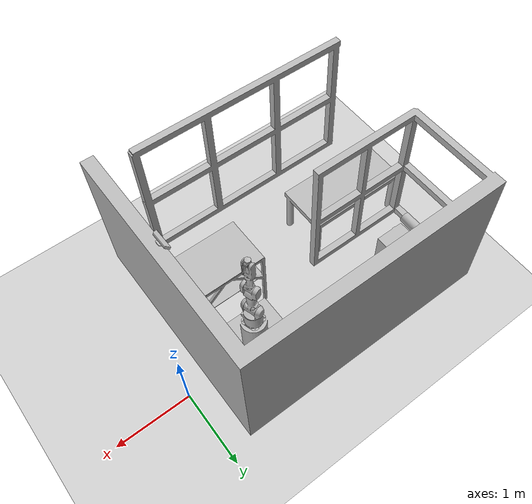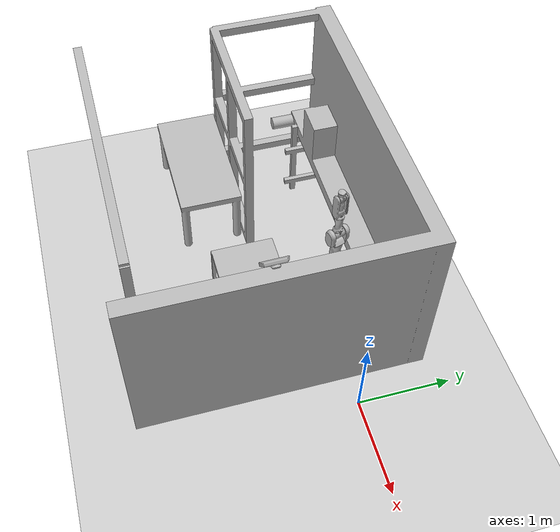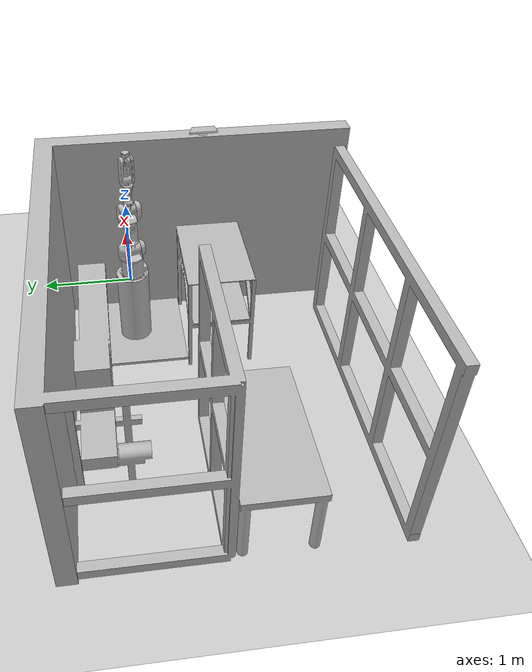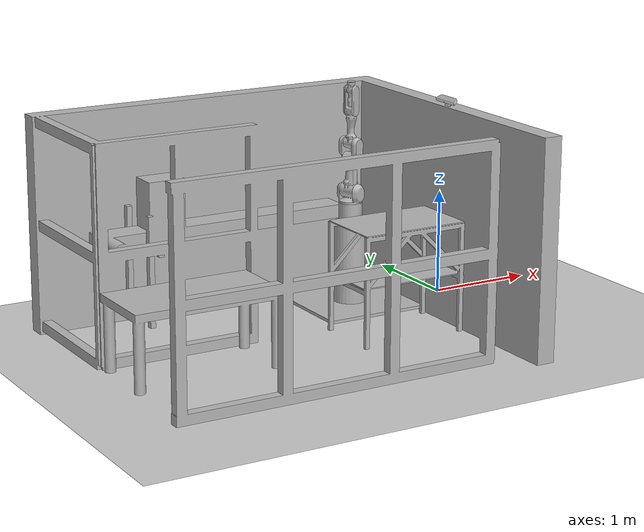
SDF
<sdf version="1.4">
 <world name="default">
  <light name="sun" type="directional">
   <pose>0 0 10 0 -0 0</pose>
   <diffuse>0.8 0.8 0.8 1</diffuse>
   <specular>0.2 0.2 0.2 1</specular>
   <attenuation>
    <range>1000</range>
    <constant>0.9</constant>
    <linear>0.01</linear>
    <quadratic>0.001</quadratic>
   </attenuation>
   <direction>-0.5 0.1 -0.9</direction>
  </light>
  <model name="ground_plane">
   <static>1</static>
   <link name="link">
    <collision name="collision">
     <geometry><plane><normal>0 0 1</normal><size>100 100</size></plane></geometry>
     <surface><friction><ode><mu>100</mu><mu2>50</mu2></ode></friction></surface>
    </collision>
    <visual name="visual">
     <cast_shadows>0</cast_shadows>
     <geometry><plane><normal>0 0 1</normal><size>100 100</size></plane></geometry>
     <material>
      <script><uri>file://media/materials/scripts/gazebo.material</uri><name>Gazebo/Grey</name></script>
     </material>
    </visual>
    <velocity_decay><linear>0</linear><angular>0</angular></velocity_decay>
   </link>
  </model>
  <physics type="ode">
   <max_step_size>0.001</max_step_size>
   <real_time_factor>1</real_time_factor>
   <real_time_update_rate>1000</real_time_update_rate>
   <gravity>0 0 -9.8</gravity>
  </physics>
  <scene><ambient>0.4 0.4 0.4 1</ambient><background>0.7 0.7 0.7 1</background><shadows>1</shadows></scene>
  <model name="scene">
   <link name="link">
    <collision name="collision">
     <geometry><mesh><uri>model://scene/meshes/table.dae</uri></mesh></geometry>
    </collision>
    <visual name="visual"><geometry><mesh><uri>model://scene/meshes/table.dae</uri></mesh></geometry></visual>
    <collision name="collision2">
     <geometry><mesh><uri>model://scene/meshes/fence1.dae</uri></mesh></geometry>
    </collision>
    <visual name="visual2"><geometry><mesh><uri>model://scene/meshes/fence1.dae</uri></mesh></geometry></visual>
    <collision name="collision3">
     <geometry><mesh><uri>model://scene/meshes/conveyorBelt.dae</uri></mesh></geometry>
    </collision>
    <visual name="visual3">
     <geometry><mesh><uri>model://scene/meshes/conveyorBelt.dae</uri></mesh></geometry>
    </visual>
    <collision name="collision4">
     <geometry><mesh><uri>model://scene/meshes/Finger.dae</uri></mesh></geometry>
    </collision>
    <visual name="visual4"><geometry><mesh><uri>model://scene/meshes/Finger.dae</uri></mesh></geometry></visual>
    <collision name="collision5">
     <geometry><mesh><uri>model://scene/meshes/foot.dae</uri></mesh></geometry>
    </collision>
    <visual name="visual5"><geometry><mesh><uri>model://scene/meshes/foot.dae</uri></mesh></geometry></visual>
    <velocity_decay><linear>0</linear><angular>0</angular></velocity_decay>
    <inertial>
     <inertia><ixx>1</ixx><ixy>0</ixy><ixz>0</ixz><iyy>1</iyy><iyz>0</iyz><izz>1</izz></inertia>
     <mass>1</mass>
    </inertial>
   </link>
   <pose>-0.999799 0 0.035406 3e-06 -2e-06 -3.9e-05</pose>
   <static>0</static>
  </model>
  <model name="WPtable">
   <link name="link">
    <collision name="collision">
     <geometry><mesh><uri>model://WPtable/meshes/WPtable.dae</uri></mesh></geometry>
    </collision>
    <visual name="visual"><geometry><mesh><uri>model://WPtable/meshes/WPtable.dae</uri></mesh></geometry></visual>
    <velocity_decay><linear>0</linear><angular>0</angular></velocity_decay>
    <inertial>
     <inertia><ixx>1</ixx><ixy>0</ixy><ixz>0</ixz><iyy>1</iyy><iyz>0</iyz><izz>1</izz></inertia>
     <mass>1</mass>
    </inertial>
   </link>
   <pose>-1.02075 -1.1514 0 0 -0 0</pose>
   <static>0</static>
  </model>
  <model name="kinect">
   <pose>-0.498007 -0.785071 2.056 0 0.6 -3.12318</pose>
   <link name="link">
    <inertial>
     <mass>0.1</mass>
     <inertia><ixx>1</ixx><ixy>0</ixy><ixz>0</ixz><iyy>1</iyy><iyz>0</iyz><izz>1</izz></inertia>
    </inertial>
    <collision name="collision"><geometry><box><size>0.073 0.276 0.072</size></box></geometry></collision>
    <visual name="visual"><geometry><mesh><uri>model://kinect/meshes/kinect.dae</uri></mesh></geometry></visual>
    <sensor name="camera" type="depth">
     <update_rate>20</update_rate>
     <camera name="__default__">
      <horizontal_fov>1.0472</horizontal_fov>
      <image><width>640</width><height>480</height><format>R8G8B8</format></image>
      <clip><near>0.05</near><far>3</far></clip>
     </camera>
    </sensor>
    <velocity_decay><linear>0</linear><angular>0</angular></velocity_decay>
   </link>
   <static>0</static>
  </model>
  <model name="Mitsubishi-PA10">
   <link name="link0">
    <inertial>
     <mass>1</mass>
     <inertia><ixx>1</ixx><ixy>0</ixy><ixz>0</ixz><iyy>1</iyy><iyz>0</iyz><izz>1</izz></inertia>
    </inertial>
    <collision name="link0_collision">
     <geometry>
      <mesh><scale>1 1 1</scale><uri>model://pa10_description/meshes/pa10/collision/link0_mesh.stl</uri></mesh>
     </geometry>
     <surface><friction><ode><mu>0.9</mu><mu2>0.9</mu2></ode></friction></surface>
    </collision>
    <visual name="link0_visual">
     <geometry>
      <mesh><scale>1 1 1</scale><uri>model://pa10_description/meshes/pa10/visual/link0_mesh.stl</uri></mesh>
     </geometry>
    </visual>
    <velocity_decay><linear>0</linear><angular>0</angular></velocity_decay>
   </link>
   <link name="link1">
    <inertial>
     <mass>1</mass>
     <inertia><ixx>1</ixx><ixy>0</ixy><ixz>0</ixz><iyy>1</iyy><iyz>0</iyz><izz>1</izz></inertia>
    </inertial>
    <collision name="link1_collision">
     <geometry>
      <mesh><scale>1 1 1</scale><uri>model://pa10_description/meshes/pa10/collision/link1_mesh.stl</uri></mesh>
     </geometry>
     <surface><friction><ode><mu>0.9</mu><mu2>0.9</mu2></ode></friction></surface>
    </collision>
    <visual name="link1_visual">
     <geometry>
      <mesh><scale>1 1 1</scale><uri>model://pa10_description/meshes/pa10/visual/link1_mesh.stl</uri></mesh>
     </geometry>
    </visual>
    <velocity_decay><linear>0</linear><angular>0</angular></velocity_decay>
   </link>
   <joint name="S1" type="revolute">
    <child>link1</child>
    <parent>link0</parent>
    <axis>
     <xyz>0 0 1</xyz>
     <limit><lower>-3.08923</lower><upper>3.08923</upper><effort>100000</effort><velocity>0.5</velocity></limit>
     <dynamics><damping>0.2</damping></dynamics>
    </axis>
    <physics>
     <ode>
      <implicit_spring_damper>0</implicit_spring_damper>
      <cfm_damping>0</cfm_damping>
      <limit><cfm>0</cfm><erp>0.2</erp></limit>
     </ode>
    </physics>
   </joint>
   <link name="link2">
    <inertial>
     <mass>1</mass>
     <inertia><ixx>1</ixx><ixy>0</ixy><ixz>0</ixz><iyy>1</iyy><iyz>0</iyz><izz>1</izz></inertia>
    </inertial>
    <collision name="link2_collision">
     <geometry>
      <mesh><scale>1 1 1</scale><uri>model://pa10_description/meshes/pa10/collision/link2_mesh.stl</uri></mesh>
     </geometry>
     <surface><friction><ode><mu>0.9</mu><mu2>0.9</mu2></ode></friction></surface>
    </collision>
    <visual name="link2_visual">
     <geometry>
      <mesh><scale>1 1 1</scale><uri>model://pa10_description/meshes/pa10/visual/link2_mesh.stl</uri></mesh>
     </geometry>
    </visual>
    <velocity_decay><linear>0</linear><angular>0</angular></velocity_decay>
   </link>
   <joint name="S2" type="revolute">
    <child>link2</child>
    <parent>link1</parent>
    <axis>
     <xyz>0 1 0</xyz>
     <limit><lower>-1.58825</lower><upper>1.58825</upper><effort>100000</effort><velocity>0.5</velocity></limit>
     <dynamics><damping>0.2</damping></dynamics>
    </axis>
    <physics>
     <ode>
      <implicit_spring_damper>0</implicit_spring_damper>
      <cfm_damping>0</cfm_damping>
      <limit><cfm>0</cfm><erp>0.2</erp></limit>
     </ode>
    </physics>
   </joint>
   <link name="link3">
    <inertial>
     <mass>1</mass>
     <inertia><ixx>1</ixx><ixy>0</ixy><ixz>0</ixz><iyy>1</iyy><iyz>0</iyz><izz>1</izz></inertia>
    </inertial>
    <collision name="link3_collision">
     <geometry>
      <mesh><scale>1 1 1</scale><uri>model://pa10_description/meshes/pa10/collision/link3_mesh.stl</uri></mesh>
     </geometry>
     <surface><friction><ode><mu>0.9</mu><mu2>0.9</mu2></ode></friction></surface>
    </collision>
    <visual name="link3_visual">
     <geometry>
      <mesh><scale>1 1 1</scale><uri>model://pa10_description/meshes/pa10/visual/link3_mesh.stl</uri></mesh>
     </geometry>
    </visual>
    <velocity_decay><linear>0</linear><angular>0</angular></velocity_decay>
   </link>
   <joint name="S3" type="revolute">
    <child>link3</child>
    <parent>link2</parent>
    <axis>
     <xyz>0 0 1</xyz>
     <limit><lower>-3.03687</lower><upper>3.03687</upper><effort>100000</effort><velocity>0.5</velocity></limit>
     <dynamics><damping>0.2</damping></dynamics>
    </axis>
    <physics>
     <ode>
      <implicit_spring_damper>0</implicit_spring_damper>
      <cfm_damping>0</cfm_damping>
      <limit><cfm>0</cfm><erp>0.2</erp></limit>
     </ode>
    </physics>
   </joint>
   <link name="link4">
    <inertial>
     <mass>1</mass>
     <inertia><ixx>1</ixx><ixy>0</ixy><ixz>0</ixz><iyy>1</iyy><iyz>0</iyz><izz>1</izz></inertia>
    </inertial>
    <collision name="link4_collision">
     <geometry>
      <mesh><scale>1 1 1</scale><uri>model://pa10_description/meshes/pa10/collision/link4_mesh.stl</uri></mesh>
     </geometry>
     <surface><friction><ode><mu>0.9</mu><mu2>0.9</mu2></ode></friction></surface>
    </collision>
    <visual name="link4_visual">
     <geometry>
      <mesh><scale>1 1 1</scale><uri>model://pa10_description/meshes/pa10/visual/link4_mesh.stl</uri></mesh>
     </geometry>
    </visual>
    <velocity_decay><linear>0</linear><angular>0</angular></velocity_decay>
   </link>
   <joint name="E1" type="revolute">
    <child>link4</child>
    <parent>link3</parent>
    <axis>
     <xyz>0 1 0</xyz>
     <limit><lower>-2.3911</lower><upper>2.3911</upper><effort>100000</effort><velocity>0.5</velocity></limit>
     <dynamics><damping>0.2</damping></dynamics>
    </axis>
    <physics>
     <ode>
      <implicit_spring_damper>0</implicit_spring_damper>
      <cfm_damping>0</cfm_damping>
      <limit><cfm>0</cfm><erp>0.2</erp></limit>
     </ode>
    </physics>
   </joint>
   <link name="link5">
    <inertial>
     <mass>1</mass>
     <inertia><ixx>1</ixx><ixy>0</ixy><ixz>0</ixz><iyy>1</iyy><iyz>0</iyz><izz>1</izz></inertia>
    </inertial>
    <collision name="link5_collision">
     <geometry>
      <mesh><scale>1 1 1</scale><uri>model://pa10_description/meshes/pa10/collision/link5_mesh.stl</uri></mesh>
     </geometry>
     <surface><friction><ode><mu>0.9</mu><mu2>0.9</mu2></ode></friction></surface>
    </collision>
    <visual name="link5_visual">
     <geometry>
      <mesh><scale>1 1 1</scale><uri>model://pa10_description/meshes/pa10/visual/link5_mesh.stl</uri></mesh>
     </geometry>
    </visual>
    <velocity_decay><linear>0</linear><angular>0</angular></velocity_decay>
   </link>
   <joint name="E2" type="revolute">
    <child>link5</child>
    <parent>link4</parent>
    <axis>
     <xyz>0 0 1</xyz>
     <limit><lower>-4.45059</lower><upper>4.45059</upper><effort>100000</effort><velocity>0.5</velocity></limit>
     <dynamics><damping>0.2</damping></dynamics>
    </axis>
    <physics>
     <ode>
      <implicit_spring_damper>0</implicit_spring_damper>
      <cfm_damping>0</cfm_damping>
      <limit><cfm>0</cfm><erp>0.2</erp></limit>
     </ode>
    </physics>
   </joint>
   <link name="link6">
    <inertial>
     <mass>1</mass>
     <inertia><ixx>1</ixx><ixy>0</ixy><ixz>0</ixz><iyy>1</iyy><iyz>0</iyz><izz>1</izz></inertia>
    </inertial>
    <collision name="link6_collision">
     <geometry>
      <mesh><scale>1 1 1</scale><uri>model://pa10_description/meshes/pa10/collision/link6_mesh.stl</uri></mesh>
     </geometry>
     <surface><friction><ode><mu>0.9</mu><mu2>0.9</mu2></ode></friction></surface>
    </collision>
    <visual name="link6_visual">
     <geometry>
      <mesh><scale>1 1 1</scale><uri>model://pa10_description/meshes/pa10/visual/link6_mesh.stl</uri></mesh>
     </geometry>
    </visual>
    <velocity_decay><linear>0</linear><angular>0</angular></velocity_decay>
   </link>
   <joint name="W1" type="revolute">
    <child>link6</child>
    <parent>link5</parent>
    <axis>
     <xyz>0 1 0</xyz>
     <limit><lower>-2.87979</lower><upper>2.87979</upper><effort>100000</effort><velocity>0.5</velocity></limit>
     <dynamics><damping>0.2</damping></dynamics>
    </axis>
    <physics>
     <ode>
      <implicit_spring_damper>0</implicit_spring_damper>
      <cfm_damping>0</cfm_damping>
      <limit><cfm>0</cfm><erp>0.2</erp></limit>
     </ode>
    </physics>
   </joint>
   <link name="link7">
    <pose>0 0 1.35 0 -0 0</pose>
    <inertial>
     <pose>0 0 2.22045e-16 0 -0 0</pose>
     <mass>1</mass>
     <inertia><ixx>1</ixx><ixy>0</ixy><ixz>0</ixz><iyy>1</iyy><iyz>0</iyz><izz>1</izz></inertia>
    </inertial>
    <collision name="link7_collision">
     <pose>0 0 1.35 0 -0 0</pose>
     <geometry>
      <mesh><scale>1 1 1</scale><uri>model://pa10_description/meshes/pa10/collision/link7_mesh.stl</uri></mesh>
     </geometry>
     <surface><friction><ode><mu>0.9</mu><mu2>0.9</mu2></ode></friction></surface>
    </collision>
    <visual name="link7_visual">
     <pose>0 0 1.35 0 -0 0</pose>
     <geometry>
      <mesh><scale>1 1 1</scale><uri>model://pa10_description/meshes/pa10/collision/link7_mesh.stl</uri></mesh>
     </geometry>
    </visual>
    <velocity_decay><linear>0</linear><angular>0</angular></velocity_decay>
   </link>
   <joint name="W2" type="revolute">
    <child>link7</child>
    <parent>link6</parent>
    <axis>
     <xyz>0 0 1</xyz>
     <limit><lower>-1e+16</lower><upper>1e+16</upper></limit>
     <dynamics><damping>0.2</damping></dynamics>
    </axis>
    <physics>
     <ode>
      <implicit_spring_damper>0</implicit_spring_damper>
      <cfm_damping>0</cfm_damping>
      <limit><cfm>0</cfm><erp>0.2</erp></limit>
     </ode>
    </physics>
   </joint>
   <pose>-1.00593 -0.005484 0.82 0 0 -2.84</pose>
   <static>0</static>
  </model>
 </world>
</sdf>
